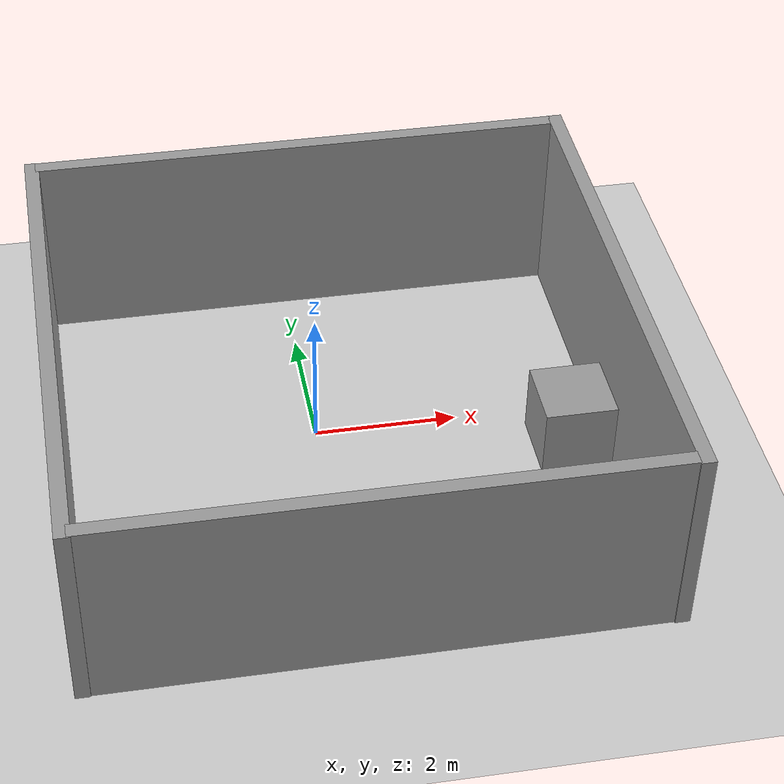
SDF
<sdf version="1.7">
 <world name="default">
  <model name="ground_plane">
   <static>1</static>
   <link name="link">
    <collision name="collision">
     <geometry><plane><normal>0 0 1</normal><size>100 100</size></plane></geometry>
     <surface><friction><ode><mu>100</mu><mu2>50</mu2></ode></friction></surface>
    </collision>
    <visual name="visual">
     <cast_shadows>0</cast_shadows>
     <geometry><plane><normal>0 0 1</normal><size>100 100</size></plane></geometry>
     <material>
      <script><uri>file://media/materials/scripts/gazebo.material</uri><name>Gazebo/Grey</name></script>
     </material>
    </visual>
   </link>
  </model>
  <light name="sun" type="directional">
   <pose>0 0 10 0 -0 0</pose>
   <diffuse>0.8 0.8 0.8 1</diffuse>
   <specular>0.2 0.2 0.2 1</specular>
   <attenuation>
    <range>1000</range>
    <constant>0.9</constant>
    <linear>0.01</linear>
    <quadratic>0.001</quadratic>
   </attenuation>
   <direction>-0.5 0.1 -0.9</direction>
   <spot><inner_angle>0</inner_angle><outer_angle>0</outer_angle><falloff>0</falloff></spot>
  </light>
  <scene><shadows>0</shadows><ambient>0.4 0.4 0.4 1</ambient><background>0.7 0.7 0.7 1</background></scene>
  <physics type="ode">
   <real_time_update_rate>1000</real_time_update_rate>
   <max_step_size>0.001</max_step_size>
   <real_time_factor>1</real_time_factor>
   <ode>
    <solver>
     <type>quick</type>
     <iters>150</iters>
     <precon_iters>0</precon_iters>
     <sor>1.4</sor>
     <use_dynamic_moi_rescaling>1</use_dynamic_moi_rescaling>
    </solver>
    <constraints>
     <cfm>1e-05</cfm>
     <erp>0.2</erp>
     <contact_max_correcting_vel>2000</contact_max_correcting_vel>
     <contact_surface_layer>0.01</contact_surface_layer>
    </constraints>
   </ode>
  </physics>
  <gravity>0 0 -9.8</gravity>
  <magnetic_field>6e-06 2.3e-05 -4.2e-05</magnetic_field>
  <atmosphere type="adiabatic"/>
  <audio><device>default</device></audio>
  <spherical_coordinates>
   <surface_model>EARTH_WGS84</surface_model>
   <latitude_deg>0</latitude_deg>
   <longitude_deg>0</longitude_deg>
   <elevation>0</elevation>
   <heading_deg>0</heading_deg>
  </spherical_coordinates>
  <model name="grey_wall">
   <static>1</static>
   <link name="link">
    <pose>0 0 1.4 0 -0 0</pose>
    <collision name="collision"><geometry><box><size>7.5 0.2 2.8</size></box></geometry></collision>
    <visual name="visual">
     <cast_shadows>0</cast_shadows>
     <geometry><box><size>7.5 0.2 2.8</size></box></geometry>
     <material>
      <script>
       <uri>model://grey_wall/materials/scripts</uri>
       <uri>model://grey_wall/materials/textures</uri>
       <name>vrc/grey_wall</name>
      </script>
     </material>
    </visual>
   </link>
   <pose>0.230976 3.12122 0 0 -0 0</pose>
  </model>
  <model name="grey_wall_0">
   <static>1</static>
   <link name="link">
    <pose>0 0 1.4 0 -0 0</pose>
    <collision name="collision"><geometry><box><size>7.5 0.2 2.8</size></box></geometry></collision>
    <visual name="visual">
     <cast_shadows>0</cast_shadows>
     <geometry><box><size>7.5 0.2 2.8</size></box></geometry>
     <material>
      <script>
       <uri>model://grey_wall/materials/scripts</uri>
       <uri>model://grey_wall/materials/textures</uri>
       <name>vrc/grey_wall</name>
      </script>
     </material>
    </visual>
   </link>
   <pose>0.231959 -4.15552 0 0 -0 0</pose>
  </model>
  <model name="grey_wall_1">
   <static>1</static>
   <link name="link">
    <pose>0 0 1.4 0 -0 0</pose>
    <collision name="collision"><geometry><box><size>7.5 0.2 2.8</size></box></geometry></collision>
    <visual name="visual">
     <cast_shadows>0</cast_shadows>
     <geometry><box><size>7.5 0.2 2.8</size></box></geometry>
     <material>
      <script>
       <uri>model://grey_wall/materials/scripts</uri>
       <uri>model://grey_wall/materials/textures</uri>
       <name>vrc/grey_wall</name>
      </script>
     </material>
    </visual>
   </link>
   <pose>4.06563 -0.525976 0 0 -0 1.57142</pose>
  </model>
  <model name="grey_wall_1_clone">
   <static>1</static>
   <link name="link">
    <pose>0 0 1.4 0 -0 0</pose>
    <collision name="collision"><geometry><box><size>7.5 0.2 2.8</size></box></geometry></collision>
    <visual name="visual">
     <cast_shadows>0</cast_shadows>
     <geometry><box><size>7.5 0.2 2.8</size></box></geometry>
     <material>
      <script>
       <uri>model://grey_wall/materials/scripts</uri>
       <uri>model://grey_wall/materials/textures</uri>
       <name>vrc/grey_wall</name>
      </script>
     </material>
    </visual>
   </link>
   <pose>-3.56501 -0.52048 0 0 -0 1.57142</pose>
  </model>
  <model name="unit_box">
   <pose>3.46579 -0.781041 0.5 0 -0 0.000621</pose>
   <link name="link">
    <inertial>
     <mass>1</mass>
     <inertia>
      <ixx>0.166667</ixx>
      <ixy>0</ixy>
      <ixz>0</ixz>
      <iyy>0.166667</iyy>
      <iyz>0</iyz>
      <izz>0.166667</izz>
     </inertia>
    </inertial>
    <collision name="collision"><geometry><box><size>1 1 1</size></box></geometry></collision>
    <visual name="visual">
     <geometry><box><size>1 1 1</size></box></geometry>
     <material>
      <script><name>Gazebo/Grey</name><uri>file://media/materials/scripts/gazebo.material</uri></script>
     </material>
    </visual>
   </link>
  </model>
 </world>
</sdf>
